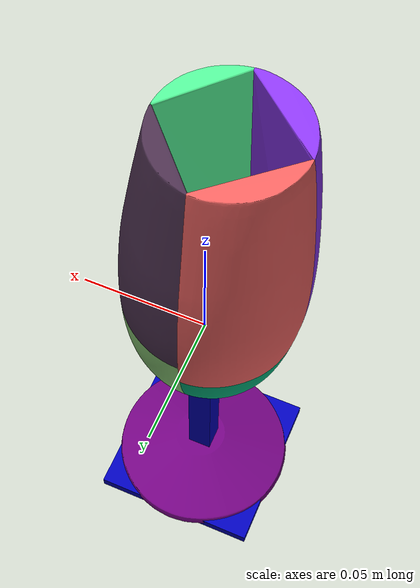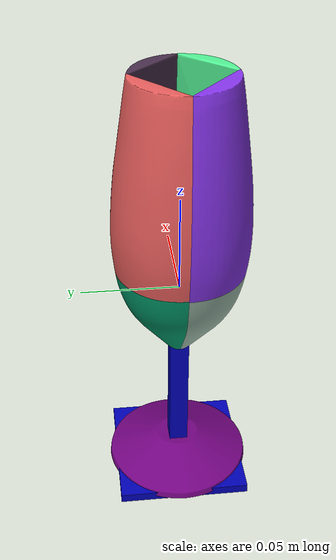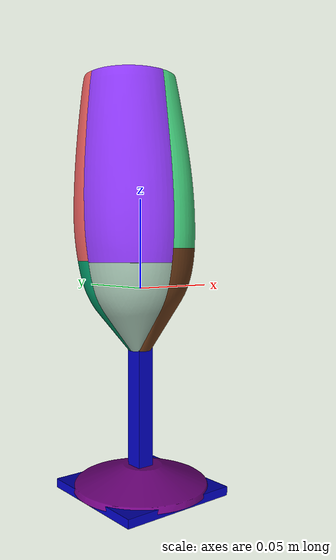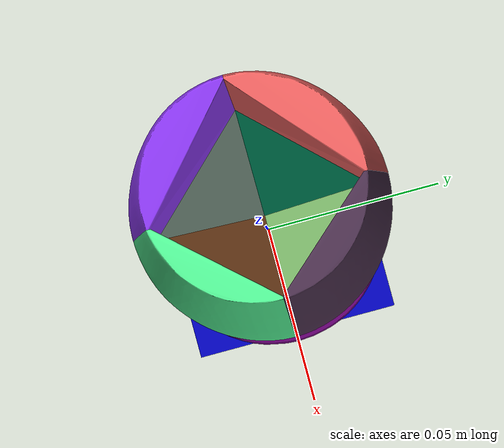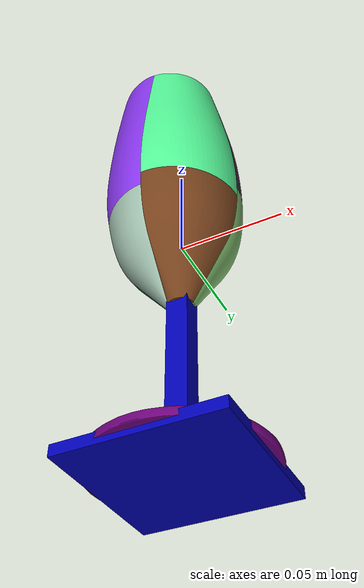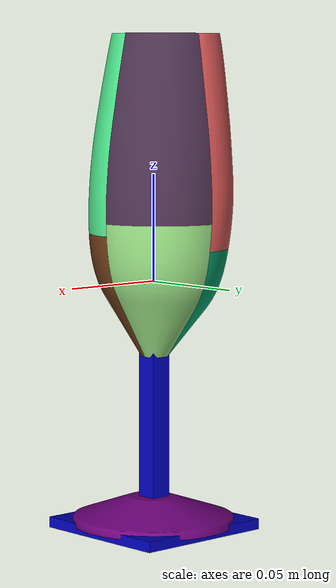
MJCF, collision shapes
<mujoco model="wine_glass">
  <asset>
    <mesh name="wine_glass" file="meshes/wine_glass/wine_glass.obj" scale="0.24 0.24 0.23"/>
    <mesh name="wine_glass_collision_1" file="meshes/wine_glass/wine_glass_collision_1.obj" scale="0.24 0.24 0.23"/>
    <mesh name="wine_glass_collision_2" file="meshes/wine_glass/wine_glass_collision_2.obj" scale="0.24 0.24 0.23"/>
    <mesh name="wine_glass_collision_3" file="meshes/wine_glass/wine_glass_collision_3.obj" scale="0.24 0.24 0.23"/>
    <mesh name="wine_glass_collision_4" file="meshes/wine_glass/wine_glass_collision_4.obj" scale="0.24 0.24 0.23"/>
    <mesh name="wine_glass_collision_5" file="meshes/wine_glass/wine_glass_collision_5.obj" scale="0.24 0.24 0.23"/>
    <mesh name="wine_glass_collision_6" file="meshes/wine_glass/wine_glass_collision_6.obj" scale="0.24 0.24 0.23"/>
    <mesh name="wine_glass_collision_7" file="meshes/wine_glass/wine_glass_collision_7.obj" scale="0.24 0.24 0.23"/>
    <mesh name="wine_glass_collision_8" file="meshes/wine_glass/wine_glass_collision_8.obj" scale="0.24 0.24 0.23"/>
    <mesh name="wine_glass_collision_9" file="meshes/wine_glass/wine_glass_collision_9.obj" scale="0.24 0.24 0.23"/>
  </asset>
  <worldbody>
    <body>
      <body name="object">
        <geom mesh="wine_glass" name="wine_glass" type="mesh"  group="1" contype="0" conaffinity="0" rgba="1 1 1 1"/>
        <geom name="stem_collision" type="box" pos="0 0 -0.07" rgba="0 0 0.7211070299400426 1" group="0" size="0.005 0.005 0.04" friction="2.0 0.2 0.01" condim="4"/>
        <geom name="base_collision" type="box" pos="0 0 -0.115" rgba="0 0 0.7211070299400426 1"  group="0" size="0.035 0.035 0.0025"/>
        <geom mesh="wine_glass_collision_1" rgba="0.44477046881988 0.010459003888439011 0.5018663739209853 1"  group="0" type="mesh"/>
        <geom mesh="wine_glass_collision_2" rgba="0.6213299578201201 0.7406855717526576 0.671158449803338 1"  group="0" type="mesh"/>
        <geom mesh="wine_glass_collision_3" rgba="0.00854571771581969 0.6337667207346851 0.43248487519501067 1"  group="0" type="mesh"/>
        <geom mesh="wine_glass_collision_4" rgba="0.4548811213039966 0.25166648054873575 0.10789211120104081 1"  group="0" type="mesh"/>
        <geom mesh="wine_glass_collision_5" rgba="0.5759654963692037 0.839661854662152 0.49009309977845683 1"  group="0" type="mesh"/>
        <geom mesh="wine_glass_collision_6" rgba="0.3210017067101343 0.9572119993191395 0.5834911857149078 1"  group="0" type="mesh"/>
        <geom mesh="wine_glass_collision_7" rgba="0.2935795448420372 0.18826568850338654 0.30437623400057423 1"  group="0" type="mesh"/>
        <geom mesh="wine_glass_collision_8" rgba="0.5394688928985513 0.21140802979253792 0.9430541906708725 1"  group="0" type="mesh"/>
        <geom mesh="wine_glass_collision_9" rgba="0.9296332490805126 0.3808728778780017 0.3736409419116651 1"  group="0" type="mesh"/>
      </body>
    </body>
  </worldbody>
</mujoco>
